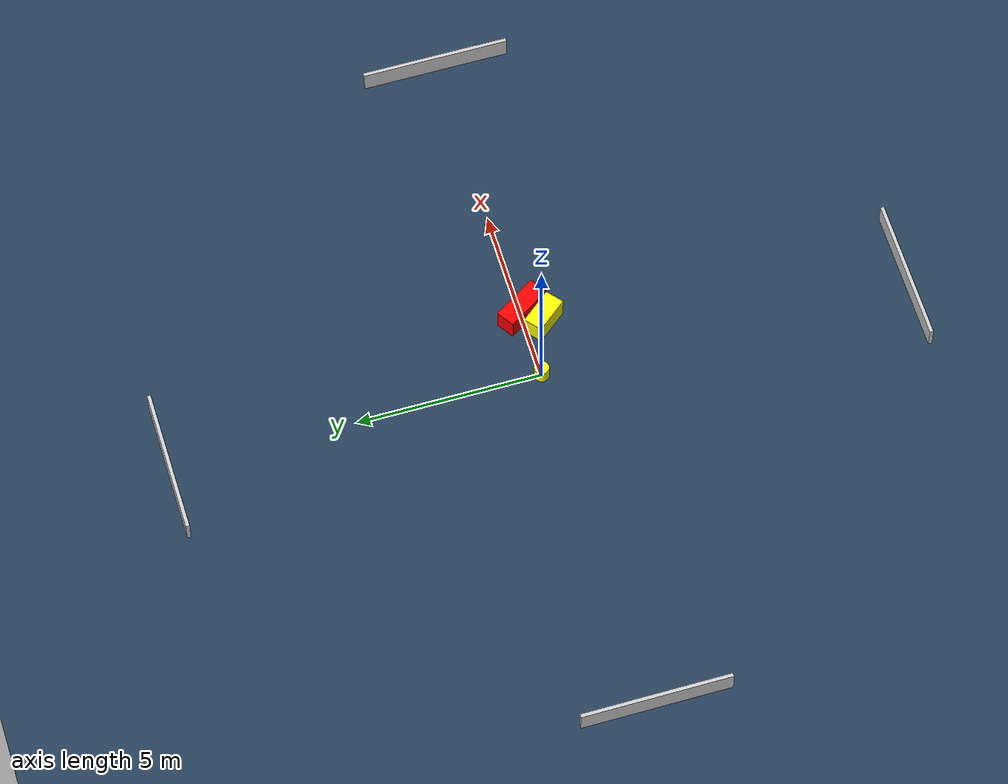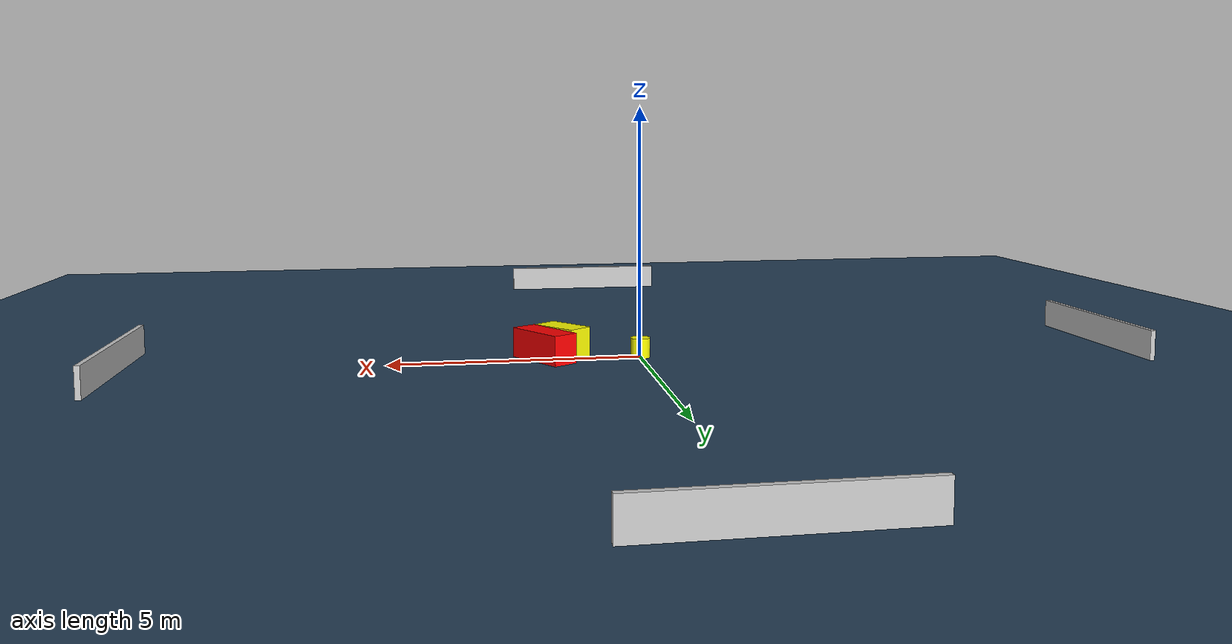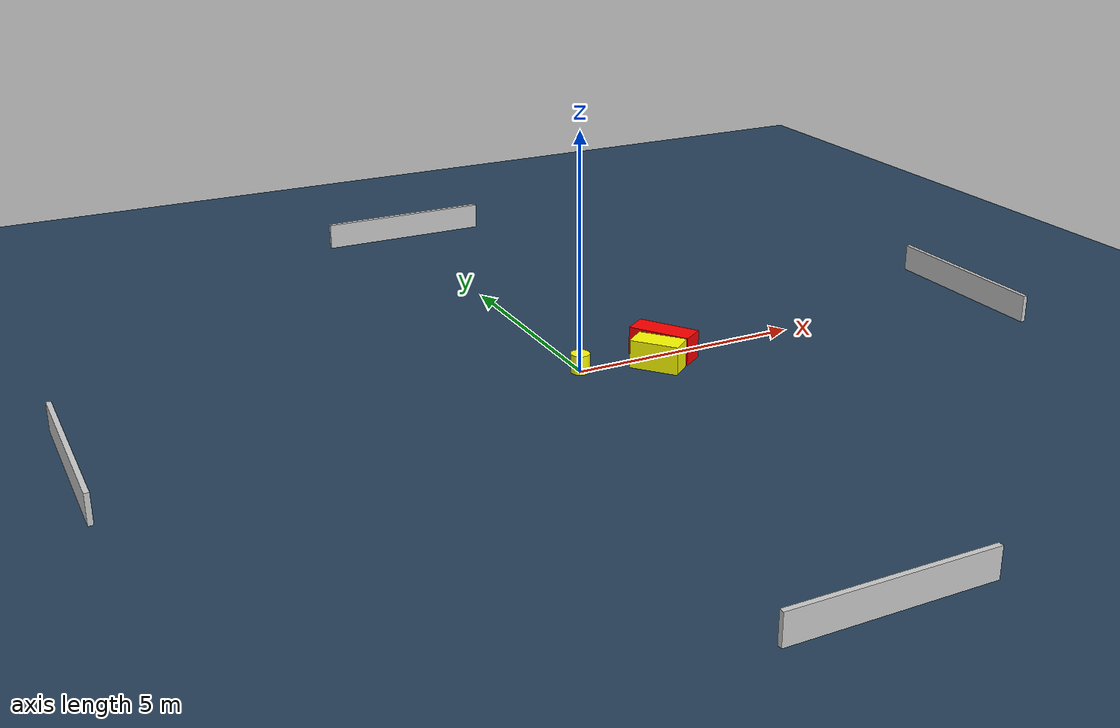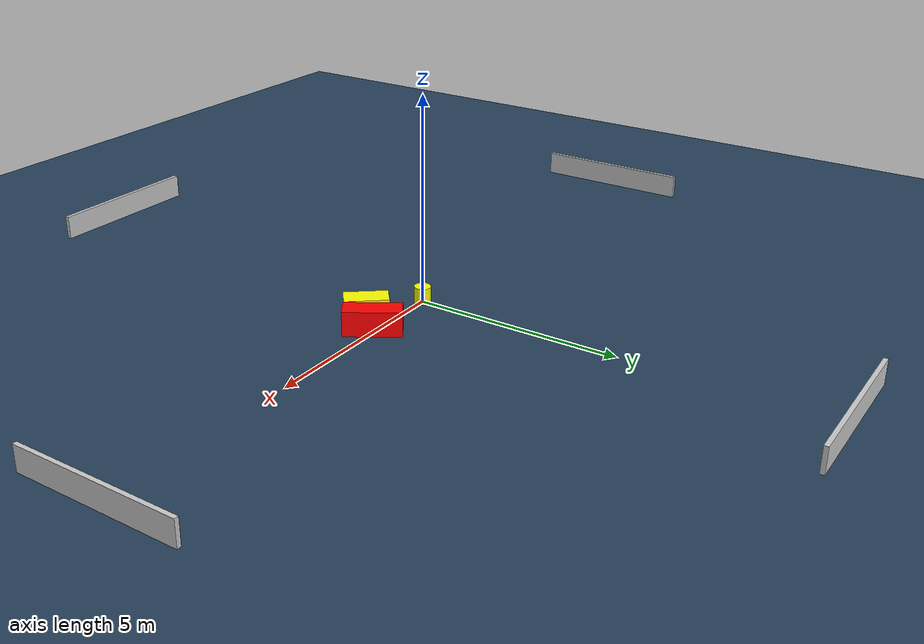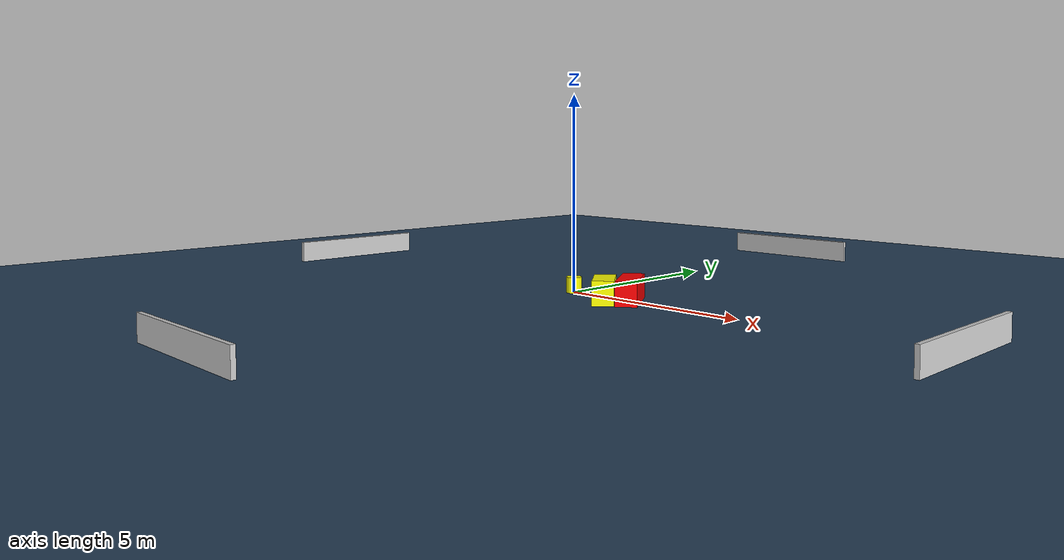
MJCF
<?xml version="1.0" ?>
<mujoco model="generated_environment">
  <option timestep="0.01" integrator="RK4" cone="elliptic"/>
  <default>
    <geom density="1"/>
  </default>
  <asset>
    <texture builtin="gradient" height="3072" name="skybox" rgb1="0.3 0.5 0.7" rgb2="0 0 0" type="skybox" width="512"/>
    <texture builtin="checker" height="300" name="groundplane" rgb1="0.2 0.3 0.4" rgb2="0.1 0.2 0.3" type="2d" width="300"/>
    <material name="groundplane" reflectance="0.2" texrepeat="5 5" texture="groundplane"/>
  </asset>
  <worldbody>
    <light dir="0 0 -1" directional="true" pos="0 0 1.5"/>
    <geom condim="3" friction="0.5 0.005 0.001" material="groundplane" name="floor" pos="0 0 0" size="0 0 0.05" type="plane"/>
    <body name="walls">
      <geom name="wall_1" condim="4" pos="-10.0 0.0 0.3" rgba="0.800000011920929 0.800000011920929 0.800000011920929 1.0" size="0.05 2.0 0.3" type="box"/>
      <geom name="wall_2" condim="4" pos="10.0 0.0 0.3" rgba="0.800000011920929 0.800000011920929 0.800000011920929 1.0" size="0.05 2.0 0.3" type="box"/>
      <geom name="wall_3" condim="4" pos="0.0 -10.0 0.3" rgba="0.800000011920929 0.800000011920929 0.800000011920929 1.0" size="2.0 0.05 0.3" type="box"/>
      <geom name="wall_4" condim="4" pos="0.0 10.0 0.3" rgba="0.800000011920929 0.800000011920929 0.800000011920929 1.0" size="2.0 0.05 0.3" type="box"/>
    </body>
    <body name="robot">
      <joint name="joint_x" type="slide" pos="0 0 0" axis="1 0 0"/>
      <joint name="joint_y" type="slide" pos="0 0 0" axis="0 1 0"/>
      <geom name="robot" type="cylinder" pos="0.0 0.0 0.2" size="0.2 0.2 0.0" mass="5.0" friction="1.0 0.005 0.0001" condim="4" rgba="1.0 1.0 0.0 1.0"/>
    </body>
    <body name="obstacle_1_movable">
      <geom name="obstacle_1_movable" condim="4" pos="1.5240646307589103 -0.5130535458246931 0.3" euler="0 0 129.551572069259" friction="0.0 0.005 0.001" rgba="1.0 1.0 0.0 1.0" size="0.517536020771205 0.2641078771570574 0.3" type="box" mass="0.1"/>
      <joint type="free"/>
    </body>
    <body name="obstacle_2_static">
      <geom name="obstacle_2_static" condim="4" pos="1.9296718694635642 -0.037822006946983504 0.3" euler="0 0 33.41054237085372" friction="0.0 0.005 0.001" rgba="1.0 0.0 0.0 1.0" size="0.2635897542104762 0.6728382886339009 0.3" type="box"/>
    </body>
  </worldbody>
  <actuator>
    <motor name="actuator_x" joint="joint_x" gear="1" ctrlrange="-1 1"/>
    <motor name="actuator_y" joint="joint_y" gear="1" ctrlrange="-1 1"/>
  </actuator>
</mujoco>
